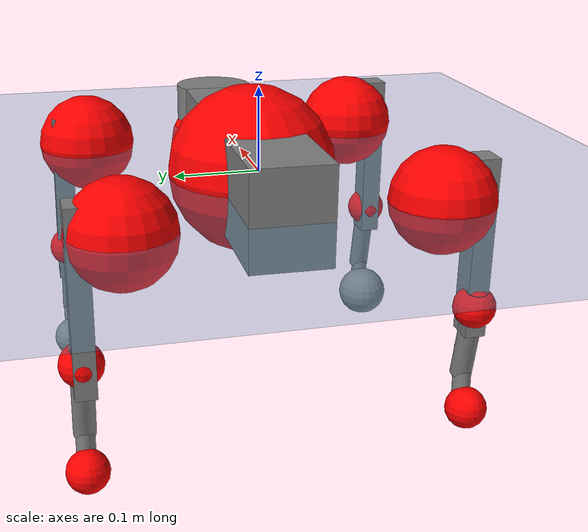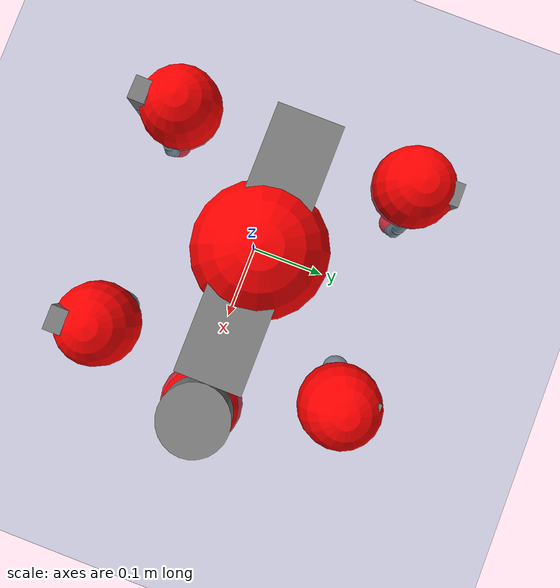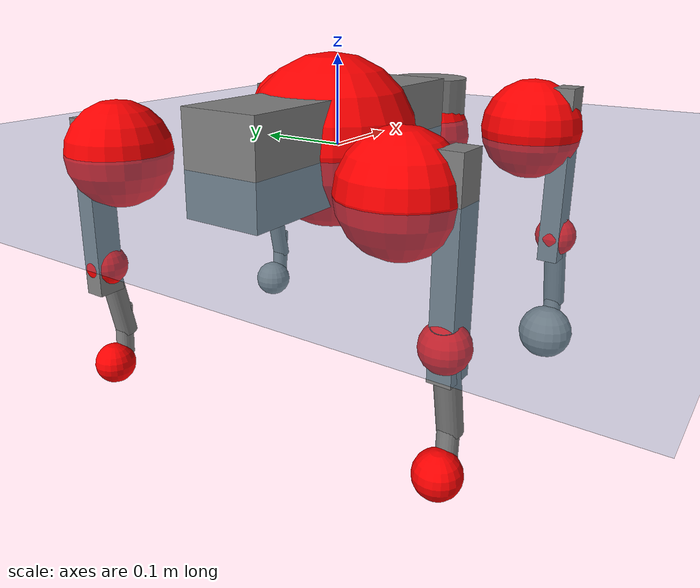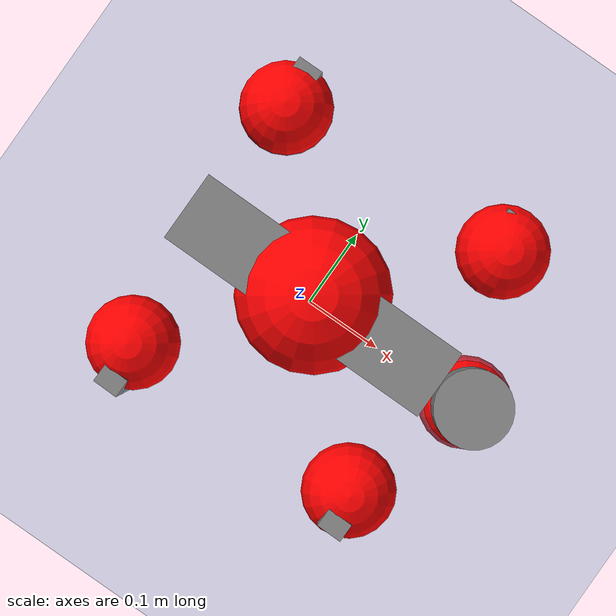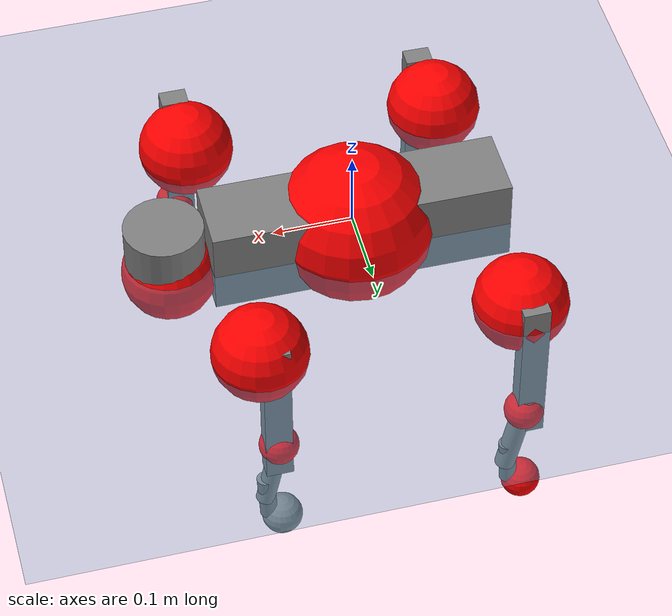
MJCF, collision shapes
<mujoco model="go2">
  <compiler angle="radian" assetdir="assets" balanceinertia="true" inertiafromgeom="false"/>

  <option timestep="0.005" density="1.2" viscosity="2e-05"/>

  <size nkey="1"/>

  <visual>
    <quality shadowsize="8192"/>
    <map shadowclip="0.5"/>
  </visual>

  <default>
    <default class="/">
      <geom contype="0" conaffinity="0" group="1" solref="-1000 -80"/>
      <site size="0.01 0.005 0.005" group="5"/>
      <general forcelimited="true" biastype="affine" gainprm="20" biasprm="0 -20 -0.5"/>
      <default class="go2">
        <joint armature="0.01" damping="0.01" frictionloss="0.2"/>
        <geom condim="1" margin="0.001"/>
        <default class="visual">
          <geom type="mesh" group="2"/>
        </default>
        <default class="collision">
          <geom group="3"/>
          <default class="foot">
            <geom size="0.022 0 0" condim="6" priority="1" friction="0.8 0.02 0.01" solimp="0.015 1 0.022"/>
          </default>
        </default>
        <default class="reward_collision_sphere">
          <geom group="5" rgba="1 0 0 1"/>
        </default>
      </default>
    </default>
  </default>

  <asset>
    <texture type="skybox" colorspace="auto" name="//unnamed_texture_0" builtin="gradient" rgb1="0.95 0.95 0.95" rgb2="0.95 0.95 0.95" width="100" height="600"/>
    <texture type="2d" colorspace="auto" name="texplane" builtin="checker" rgb1="0.345 0.575 0.748" rgb2="0.345 0.575 0.748" markrgb="1 1 1" width="512" height="512"/>
    <material name="MatPlane" class="/" texture="texplane" texuniform="true" texrepeat="2 2" specular="0.9"/>
    <material name="metal" class="/" rgba="0.9 0.95 0.95 1"/>
    <material name="black" class="/" rgba="0 0 0 1"/>
    <material name="white" class="/"/>
    <material name="gray" class="/" rgba="0.671705 0.692426 0.77427 1"/>
    <mesh name="base_0" class="/" file="base_0.obj"/>
    <mesh name="base_1" class="/" file="base_1.obj"/>
    <mesh name="base_2" class="/" file="base_2.obj"/>
    <mesh name="base_3" class="/" file="base_3.obj"/>
    <mesh name="base_4" class="/" file="base_4.obj"/>
    <mesh name="hip_0" class="/" file="hip_0.obj"/>
    <mesh name="hip_1" class="/" file="hip_1.obj"/>
    <mesh name="thigh_0" class="/" file="thigh_0.obj"/>
    <mesh name="thigh_1" class="/" file="thigh_1.obj"/>
    <mesh name="thigh_mirror_0" class="/" file="thigh_mirror_0.obj"/>
    <mesh name="thigh_mirror_1" class="/" file="thigh_mirror_1.obj"/>
    <mesh name="calf_0" class="/" file="calf_0.obj"/>
    <mesh name="calf_1" class="/" file="calf_1.obj"/>
    <mesh name="calf_mirror_0" class="/" file="calf_mirror_0.obj"/>
    <mesh name="calf_mirror_1" class="/" file="calf_mirror_1.obj"/>
    <mesh name="foot" class="/" file="foot.obj"/>
  </asset>

  <worldbody>
    <geom name="floor" class="/" size="100 100 0.125" type="plane" group="0" material="MatPlane"/>
    <light name="toplight_shadow" class="/" pos="0 0 5" dir="0.0990148 0.0990148 -0.990148" type="directional" ambient="0.04 0.04 0.04" diffuse="0.55 0.55 0.55" specular="0.12 0.12 0.12"/>
    <light name="toplight_fill" class="/" pos="0 0 5" dir="0.0990148 0.0990148 -0.990148" type="directional" castshadow="false" ambient="0.04 0.04 0.04" diffuse="0.3 0.3 0.3" specular="0.08 0.08 0.08"/>
    <body name="trunk" childclass="go2" pos="-0.000926115 0.00863757 0.00415237" quat="0.999991 0.00338747 0.00165151 -0.00217151">
      <inertial pos="0.0248066 0.0135796 -0.0123355" quat="-0.030802 0.72183 0.0131797 0.691259" mass="6.84746" diaginertia="0.0581804 0.933734 0.00214814"/>
      <joint name="//unnamed_joint_0" type="free" armature="0" damping="0" frictionloss="0"/>
      <geom name="//unnamed_geom_1" class="visual" material="black" mesh="base_0"/>
      <geom name="//unnamed_geom_2" class="visual" material="black" mesh="base_1"/>
      <geom name="//unnamed_geom_3" class="visual" material="black" mesh="base_2"/>
      <geom name="//unnamed_geom_4" class="visual" material="white" mesh="base_3"/>
      <geom name="//unnamed_geom_5" class="visual" material="gray" mesh="base_4"/>
      <geom name="trunk_1" class="collision" size="0.186097 0.0462523 0.0563931" type="box"/>
      <geom name="trunk_2" class="collision" size="0.0494676 0.0445209" pos="0.237131 0 0.00613463" type="cylinder"/>
      <geom name="trunk_3" class="collision" size="0.0464996" pos="0.243787 0 -0.0368078"/>
      <geom name="//unnamed_geom_9" class="reward_collision_sphere" size="0.0989353"/>
      <geom name="//unnamed_geom_10" class="reward_collision_sphere" size="0.0593612" pos="0.232971 0 -0.0276058"/>
      <site name="imu" pos="-0.0168876 -0.000342676 0.0257075" size="0.00989353"/>
      <camera name="track" pos="0 -3.04512 0" quat="0.707107 0.707107 0 0" mode="trackcom"/>
      <camera name="ego_camera" pos="0.259596 0 0.0276058" quat="-0.5 -0.5 0.5 0.5"/>
      <body name="FL_hip" pos="0.160388 0.073136 -0.000874436" quat="1 0.000130612 9.57757e-05 -2.73843e-05">
        <inertial pos="-0.00321578 0.0137795 0.00130589" quat="0.446527 0.547218 0.485611 0.51512" mass="0.639923" diaginertia="0.000341781 0.00507639 4.0249e-05"/>
        <joint name="FL_hip_joint" pos="0 0 0" axis="0.99932 0.0272342 -0.0248444" range="-0.908879 1.08747" armature="0.0105293" damping="0.0112748" frictionloss="0.186719"/>
        <geom name="//unnamed_geom_11" class="visual" material="metal" mesh="hip_0"/>
        <geom name="//unnamed_geom_12" class="visual" material="gray" mesh="hip_1"/>
        <geom name="//unnamed_geom_13" class="collision" size="0.0455102 0.0197871" pos="0 0.121805 0" quat="0.707107 0.707107 0 0" type="cylinder"/>
        <geom name="//unnamed_geom_14" class="reward_collision_sphere" size="0.0593612" pos="0 0.106579 0"/>
        <body name="FL_thigh" pos="-0.0106118 0.13848 -0.00372014" quat="0.999975 0.00637273 -0.00283393 -0.000725272">
          <inertial pos="-0.00390048 -0.048014 -0.0180287" quat="0.823154 0.0918835 0.00334301 0.560324" mass="1.03345" diaginertia="0.00275883 0.0403225 7.71168e-05"/>
          <joint name="FL_thigh_joint" pos="0 0 0" axis="-0.0197846 0.998983 -0.0405149" range="-1.39385 3.74246" armature="0.00303134" damping="0.00225383" frictionloss="0.269861"/>
          <geom name="//unnamed_geom_15" class="visual" material="metal" mesh="thigh_0"/>
          <geom name="//unnamed_geom_16" class="visual" material="gray" mesh="thigh_1"/>
          <geom name="//unnamed_geom_17" class="collision" size="0.105366 0.0121196 0.016819" pos="0 0 -0.0653338" quat="0.707107 0 0.707107 0" type="box"/>
          <body name="FL_calf" pos="-0.00261174 -0.00255659 -0.132195" quat="1 1.83306e-06 -0.00015974 3.34214e-06">
            <inertial pos="0.0170354 0.00717168 -0.0762778" quat="0.703187 0.00945778 -0.0247567 0.710511" mass="0.242778" diaginertia="0.00066226 0.0111279 5.14337e-06"/>
            <joint name="FL_calf_joint" pos="0 0 0" axis="-0.0192098 0.99962 -0.0197452" range="-3.00531 -1.04413" armature="0.013796" damping="0.0649397" frictionloss="0.154322"/>
            <geom name="//unnamed_geom_18" class="visual" material="gray" mesh="calf_0"/>
            <geom name="//unnamed_geom_19" class="visual" material="black" mesh="calf_1"/>
            <geom name="FL_calf0" class="collision" size="0.0118722 0.0593612" pos="0.00665631 0 -0.0368078" quat="0.994493 0 -0.104807 0" type="cylinder"/>
            <geom name="//unnamed_geom_21" class="collision" size="0.0108829 0.032154" pos="0.0166408 0 -0.0907925" quat="0.999688 0 0.0249974 0" type="cylinder"/>
            <geom name="//unnamed_geom_22" class="visual" pos="0 0 -0.130668" quat="1 0 0 0" material="black" mesh="foot"/>
            <geom name="FL_foot" class="foot" size="0.0253525" pos="-0.00166408 0 -0.130668"/>
            <geom name="//unnamed_geom_24" class="reward_collision_sphere" size="0.0247338"/>
            <geom name="//unnamed_geom_25" class="reward_collision_sphere" size="0.0247338" pos="-0.00166408 0 -0.130668"/>
            <site name="FL_foot" class="foot" pos="-0.00166408 0 -0.130668" size="0.00989353"/>
          </body>
        </body>
      </body>
      <body name="FR_hip" pos="0.174803 -0.0646598 0.00684389" quat="0.999999 0.000704538 -0.00103044 -0.000573807">
        <inertial pos="-0.00285489 -0.00818263 0.00566087" quat="0.509151 0.473557 0.473812 0.540381" mass="0.705526" diaginertia="0.000396869 0.00487976 3.96629e-05"/>
        <joint name="FR_hip_joint" pos="0 0 0" axis="0.999324 -0.0122873 0.0346518" stiffness="0.0725111" range="-1.06437 0.821595" armature="0.0125057" damping="0.0161324" frictionloss="0.160532"/>
        <geom name="//unnamed_geom_26" class="visual" pos="0 7.91966e-09 3.39691e-07" quat="4.63268e-05 1 0 0" material="metal" mesh="hip_0"/>
        <geom name="//unnamed_geom_27" class="visual" pos="0 1.28387e-08 -8.40185e-07" quat="4.63268e-05 1 0 0" material="gray" mesh="hip_1"/>
        <geom name="//unnamed_geom_28" class="collision" size="0.0455102 0.0197871" pos="0 -0.121805 0" quat="0.707107 0.707107 0 0" type="cylinder"/>
        <geom name="//unnamed_geom_29" class="reward_collision_sphere" size="0.0593612" pos="0 -0.106579 0"/>
        <body name="FR_thigh" pos="0.00540823 -0.145241 0.0118987" quat="0.999999 -0.000596224 0.00113668 7.94067e-05">
          <inertial pos="-0.0097392 0.0422564 -0.032592" quat="0.552138 -0.0287714 0.106746 0.82639" mass="1.04604" diaginertia="0.00259073 0.0473242 7.56048e-05"/>
          <joint name="FR_thigh_joint" pos="0 0 0" axis="-0.0156771 -0.999854 0.00684435" range="-3.50184 1.47718" armature="0.0152362" damping="0" frictionloss="0.277337"/>
          <geom name="//unnamed_geom_30" class="visual" material="metal" mesh="thigh_mirror_0"/>
          <geom name="//unnamed_geom_31" class="visual" material="gray" mesh="thigh_mirror_1"/>
          <geom name="//unnamed_geom_32" class="collision" size="0.105366 0.0121196 0.016819" pos="0 0 -0.0653338" quat="0.707107 0 0.707107 0" type="box"/>
          <body name="FR_calf" pos="0.00632081 -0.000930891 -0.142601" quat="0.999999 -0.000718403 -0.00041213 -0.00109424">
            <inertial pos="0.0133126 -0.00752933 -0.0881562" quat="0.701739 0.0232914 0.00402429 0.712042" mass="0.192082" diaginertia="0.000522632 0.00876122 4.18678e-06"/>
            <joint name="FR_calf_joint" pos="0 0 0" axis="0.0027273 -0.999996 -0.000133318" range="0.747793 2.65109" armature="0.0106662" damping="0.0747152" frictionloss="0.246549"/>
            <geom name="//unnamed_geom_33" class="visual" material="gray" mesh="calf_mirror_0"/>
            <geom name="//unnamed_geom_34" class="visual" material="black" mesh="calf_mirror_1"/>
            <geom name="FR_calf0" class="collision" size="0.0128616 0.0593612" pos="0.00832038 0 -0.0368078" quat="0.995004 0 -0.0998334 0" type="cylinder"/>
            <geom name="//unnamed_geom_36" class="collision" size="0.0108829 0.032154" pos="0.0166408 0 -0.0907925" quat="0.999688 0 0.0249974 0" type="cylinder"/>
            <geom name="//unnamed_geom_37" class="visual" pos="0 0 -0.130668" quat="1 0 0 0" material="black" mesh="foot"/>
            <geom name="FR_foot" class="foot" size="0.0330849" pos="-0.00166408 0 -0.130668"/>
            <geom name="//unnamed_geom_39" class="reward_collision_sphere" size="0.0247338"/>
            <geom name="//unnamed_geom_40" class="reward_collision_sphere" size="0.0247338" pos="-0.00166408 0 -0.130668"/>
            <site name="FR_foot" class="foot" pos="-0.00166408 0 -0.130668" size="0.00989353"/>
          </body>
        </body>
      </body>
      <body name="RL_hip" pos="-0.16207 0.0642128 -0.00985074" quat="1 -8.45833e-05 -4.82213e-05 6.1756e-07">
        <inertial pos="0.00200234 0.00573669 -0.00799315" quat="0.493331 0.50042 0.505773 0.500398" mass="0.824076" diaginertia="0.000387087 0.0056199 4.03165e-05"/>
        <joint name="RL_hip_joint" pos="0 0 0" axis="-0.99962 0.00500275 -0.0271102" range="-1.26996 1.14167" armature="0.0112367" damping="0.00703199" frictionloss="0.0992136"/>
        <geom name="//unnamed_geom_41" class="visual" pos="-1.90414e-09 0 -3.73255e-07" quat="4.63268e-05 0 1 0" material="metal" mesh="hip_0"/>
        <geom name="//unnamed_geom_42" class="visual" pos="-3.08684e-09 0 -3.31024e-07" quat="4.63268e-05 0 1 0" material="gray" mesh="hip_1"/>
        <geom name="//unnamed_geom_43" class="collision" size="0.0455102 0.0197871" pos="0 0.121805 0" quat="0.707107 0.707107 0 0" type="cylinder"/>
        <geom name="//unnamed_geom_44" class="reward_collision_sphere" size="0.0593612" pos="0 0.106579 0"/>
        <body name="RL_thigh" pos="-0.00236202 0.15182 -0.00340243" quat="0.99998 0.000365898 -0.00277512 0.00568024">
          <inertial pos="-0.00297446 -0.0487531 -0.0246771" quat="0.81515 0.125497 -0.0407664 0.564021" mass="1.29036" diaginertia="0.00255799 0.0429238 6.4441e-05"/>
          <joint name="RL_thigh_joint" pos="0 0 0" axis="-0.0696312 0.997535 0.00871302" stiffness="0.00491931" range="-0.500068 4.53131" armature="0.00562457" damping="0" frictionloss="0.270207"/>
          <geom name="//unnamed_geom_45" class="visual" material="metal" mesh="thigh_0"/>
          <geom name="//unnamed_geom_46" class="visual" material="gray" mesh="thigh_1"/>
          <geom name="//unnamed_geom_47" class="collision" size="0.105366 0.0121196 0.016819" pos="0 0 -0.0653338" quat="0.707107 0 0.707107 0" type="box"/>
          <body name="RL_calf" pos="0.00592247 0.00173899 -0.139813" quat="0.999994 -9.3694e-06 -0.00130795 -0.00325089">
            <inertial pos="0.00647442 -0.0117532 -0.0861474" quat="0.710048 0.000904031 -0.00407909 0.704141" mass="0.239633" diaginertia="0.000646677 0.0130679 5.07254e-06"/>
            <joint name="RL_calf_joint" pos="0 0 0" axis="-0.00111287 0.999944 0.0105157" range="-2.99621 -0.808448" armature="0.002899" damping="0" frictionloss="0.280012"/>
            <geom name="//unnamed_geom_48" class="visual" material="gray" mesh="calf_0"/>
            <geom name="//unnamed_geom_49" class="visual" material="black" mesh="calf_1"/>
            <geom name="RL_calf0" class="collision" size="0.0128616 0.0593612" pos="0.00832038 0 -0.0368078" quat="0.995004 0 -0.0998334 0" type="cylinder"/>
            <geom name="//unnamed_geom_51" class="collision" size="0.0108829 0.032154" pos="0.0166408 0 -0.0907925" quat="0.999688 0 0.0249974 0" type="cylinder"/>
            <geom name="//unnamed_geom_52" class="visual" pos="0 0 -0.130668" quat="1 0 0 0" material="black" mesh="foot"/>
            <geom name="RL_foot" class="foot" size="0.0231201" pos="-0.00166408 0 -0.130668"/>
            <geom name="//unnamed_geom_54" class="reward_collision_sphere" size="0.0247338"/>
            <geom name="//unnamed_geom_55" class="reward_collision_sphere" size="0.0247338" pos="-0.00166408 0 -0.130668"/>
            <site name="RL_foot" class="foot" pos="-0.00166408 0 -0.130668" size="0.00989353"/>
          </body>
        </body>
      </body>
      <body name="RR_hip" pos="-0.1473 -0.0703507 -0.00327313" quat="0.999973 -0.00300381 6.52806e-05 -0.0066495">
        <inertial pos="0.00437091 0.00115563 0.00121246" quat="0.502462 0.49834 0.497899 0.501283" mass="0.702423" diaginertia="0.000383016 0.00500633 3.68213e-05"/>
        <joint name="RR_hip_joint" pos="0 0 0" axis="-0.999998 -0.0019224 0.000209455" range="-0.996501 0.871401" armature="0.00381059" damping="0.0143173" frictionloss="0.119304"/>
        <geom name="//unnamed_geom_56" class="visual" pos="1.92805e-09 7.91966e-09 -7.12946e-07" quat="2.14617e-09 4.63268e-05 4.63268e-05 -1" material="metal" mesh="hip_0"/>
        <geom name="//unnamed_geom_57" class="visual" pos="3.02771e-09 1.28387e-08 5.09161e-07" quat="2.14617e-09 4.63268e-05 4.63268e-05 -1" material="gray" mesh="hip_1"/>
        <geom name="//unnamed_geom_58" class="collision" size="0.0455102 0.0197871" pos="0 -0.121805 0" quat="0.707107 0.707107 0 0" type="cylinder"/>
        <geom name="//unnamed_geom_59" class="reward_collision_sphere" size="0.0593612" pos="0 -0.106579 0"/>
        <body name="RR_thigh" pos="0.00891592 -0.155522 0.0045245" quat="0.999996 0.00103184 -0.00109762 -0.00227122">
          <inertial pos="-0.00214961 0.0436903 -0.0195321" quat="0.549328 -0.0234595 0.0925365 0.830136" mass="1.01993" diaginertia="0.00231337 0.0482491 8.12838e-05"/>
          <joint name="RR_thigh_joint" pos="0 0 0" axis="-0.00146178 -0.999992 0.00361847" range="-4.53632 0.23884" armature="0.0165691" damping="0" frictionloss="0.201298"/>
          <geom name="//unnamed_geom_60" class="visual" material="metal" mesh="thigh_mirror_0"/>
          <geom name="//unnamed_geom_61" class="visual" material="gray" mesh="thigh_mirror_1"/>
          <geom name="//unnamed_geom_62" class="collision" size="0.105366 0.0121196 0.016819" pos="0 0 -0.0653338" quat="0.707107 0 0.707107 0" type="box"/>
          <body name="RR_calf" pos="-0.00762376 -0.000168011 -0.136384" quat="1 -0.000151086 -0.000199111 0.000305282">
            <inertial pos="0.0126987 -0.000564206 -0.0877009" quat="0.704328 -0.00946681 0.00107025 0.709811" mass="0.211382" diaginertia="0.000573536 0.0111593 4.7268e-06"/>
            <joint name="RR_calf_joint" pos="0 0 0" axis="-0.041026 -0.998733 0.0291387" range="0.602516 2.59446" armature="0.0110921" damping="0.00911958" frictionloss="0.126738"/>
            <geom name="//unnamed_geom_63" class="visual" material="gray" mesh="calf_mirror_0"/>
            <geom name="//unnamed_geom_64" class="visual" material="black" mesh="calf_mirror_1"/>
            <geom name="RR_calf0" class="collision" size="0.0128616 0.0593612" pos="0.00832038 0 -0.0368078" quat="0.995004 0 -0.0998334 0" type="cylinder"/>
            <geom name="//unnamed_geom_66" class="collision" size="0.0108829 0.032154" pos="0.0166408 0 -0.0907925" quat="0.999688 0 0.0249974 0" type="cylinder"/>
            <geom name="//unnamed_geom_67" class="visual" pos="0 0 -0.130668" quat="1 0 0 0" material="black" mesh="foot"/>
            <geom name="RR_foot" class="foot" size="0.0099992" pos="-0.00166408 0 -0.130668"/>
            <geom name="//unnamed_geom_69" class="reward_collision_sphere" size="0.0247338"/>
            <geom name="//unnamed_geom_70" class="reward_collision_sphere" size="0.0247338" pos="-0.00166408 0 -0.130668"/>
            <site name="RR_foot" class="foot" pos="-0.00166408 0 -0.130668" size="0.00989353"/>
          </body>
        </body>
      </body>
    </body>
  </worldbody>

  <contact>
    <pair class="/" geom1="floor" geom2="FL_foot" name="//unnamed_contact_0"/>
    <pair class="/" geom1="floor" geom2="FR_foot" name="//unnamed_contact_1"/>
    <pair class="/" geom1="floor" geom2="RL_foot" name="//unnamed_contact_2"/>
    <pair class="/" geom1="floor" geom2="RR_foot" name="//unnamed_contact_3"/>
  </contact>

  <actuator>
    <general name="FL_hip" class="/" joint="FL_hip_joint" forcerange="-18.0149 18.0149" gainprm="20.6527" biasprm="0 -20.6527 -0.492476"/>
    <general name="FL_thigh" class="/" joint="FL_thigh_joint" forcerange="-22.2275 22.2275" gainprm="20.6527" biasprm="0 -20.6527 -0.492476"/>
    <general name="FL_calf" class="/" joint="FL_calf_joint" forcerange="-45.2088 45.2088" gainprm="20.6527" biasprm="0 -20.6527 -0.492476"/>
    <general name="FR_hip" class="/" joint="FR_hip_joint" forcerange="-29.3564 29.3564" gainprm="20.6527" biasprm="0 -20.6527 -0.492476"/>
    <general name="FR_thigh" class="/" joint="FR_thigh_joint" forcerange="-23.1217 23.1217" gainprm="20.6527" biasprm="0 -20.6527 -0.492476"/>
    <general name="FR_calf" class="/" joint="FR_calf_joint" forcerange="-60.9367 60.9367" gainprm="20.6527" biasprm="0 -20.6527 -0.492476"/>
    <general name="RL_hip" class="/" joint="RL_hip_joint" forcerange="-27.314 27.314" gainprm="20.6527" biasprm="0 -20.6527 -0.492476"/>
    <general name="RL_thigh" class="/" joint="RL_thigh_joint" forcerange="-23.0524 23.0524" gainprm="20.6527" biasprm="0 -20.6527 -0.492476"/>
    <general name="RL_calf" class="/" joint="RL_calf_joint" forcerange="-38.8952 38.8952" gainprm="20.6527" biasprm="0 -20.6527 -0.492476"/>
    <general name="RR_hip" class="/" joint="RR_hip_joint" forcerange="-29.062 29.062" gainprm="20.6527" biasprm="0 -20.6527 -0.492476"/>
    <general name="RR_thigh" class="/" joint="RR_thigh_joint" forcerange="-19.0235 19.0235" gainprm="20.6527" biasprm="0 -20.6527 -0.492476"/>
    <general name="RR_calf" class="/" joint="RR_calf_joint" forcerange="-24.6339 24.6339" gainprm="20.6527" biasprm="0 -20.6527 -0.492476"/>
  </actuator>

  <sensor>
    <gyro site="imu" name="imu_angular_velocity"/>
    <velocimeter site="imu" name="imu_linear_velocity"/>
    <framelinvel objtype="site" objname="FL_foot" name="FL_foot_global_linear_velocity"/>
    <framelinvel objtype="site" objname="FR_foot" name="FR_foot_global_linear_velocity"/>
    <framelinvel objtype="site" objname="RL_foot" name="RL_foot_global_linear_velocity"/>
    <framelinvel objtype="site" objname="RR_foot" name="RR_foot_global_linear_velocity"/>
  </sensor>

  <keyframe>
    <key name="home" qpos="0 0 0.325 1 0 0 0 0.1 0.8 -1.5 -0.1 -0.8 1.5 -0.1 0.8 -1.5 0.1 -0.8 1.5"/>
  </keyframe>
</mujoco>
